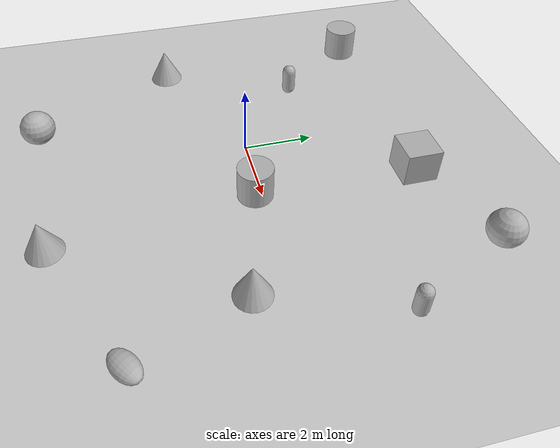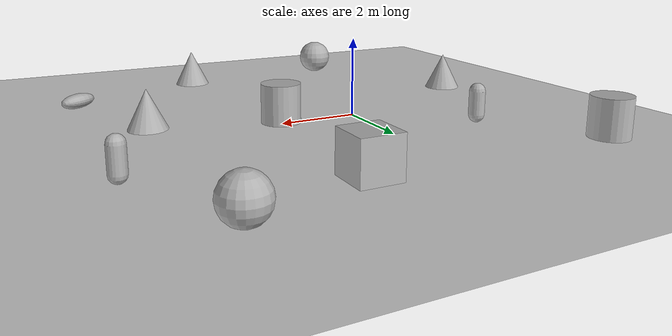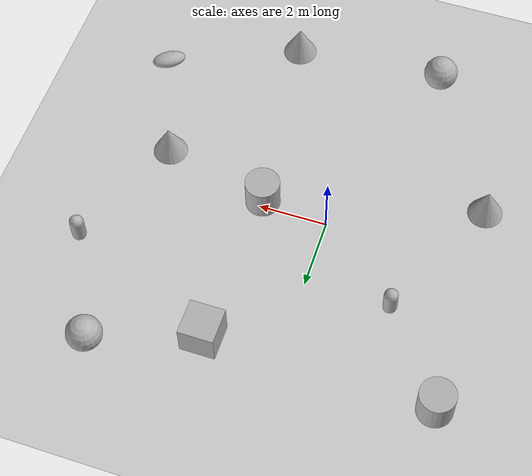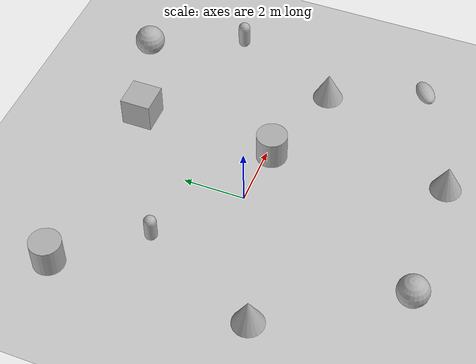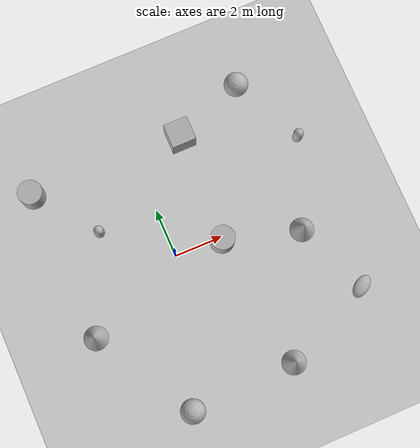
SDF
<sdf version='1.10'>
  <world name='empty'>
    <physics name='1ms' type='ignored'>
      <max_step_size>0.001</max_step_size>
      <real_time_factor>1</real_time_factor>
      <real_time_update_rate>1000</real_time_update_rate>
    </physics>

    <plugin
      filename="gz-sim-navsat-system"
      name="gz::sim::systems::NavSat">
    </plugin>

    ...

    <spherical_coordinates>
      <surface_model>EARTH_WGS84</surface_model>
      <world_frame_orientation>ENU</world_frame_orientation>
      <latitude_deg>17.723388</latitude_deg>
      <longitude_deg>78.094193</longitude_deg>
      <elevation>0</elevation>
      <heading_deg>0</heading_deg>
    </spherical_coordinates>
    <plugin name='gz::sim::systems::Physics' filename='gz-sim-physics-system'/>
    <plugin name='gz::sim::systems::UserCommands' filename='gz-sim-user-commands-system'/>
    <plugin name='gz::sim::systems::SceneBroadcaster' filename='gz-sim-scene-broadcaster-system'/>
    <plugin name='gz::sim::systems::Contact' filename='gz-sim-contact-system'/>
    <gravity>0 0 -9.8000000000000007</gravity>
    <magnetic_field>5.5644999999999998e-06 2.2875799999999999e-05 -4.2388400000000002e-05</magnetic_field>
    <atmosphere type='adiabatic'/>
    <scene>
      <ambient>0.400000006 0.400000006 0.400000006 1</ambient>
      <background>0.699999988 0.699999988 0.699999988 1</background>
      <shadows>true</shadows>
    </scene>
    <model name='ground_plane'>
      <static>true</static>
      <link name='link'>
        <collision name='collision'>
          <geometry>
            <plane>
              <normal>0 0 1</normal>
              <size>100 100</size>
            </plane>
          </geometry>
          <surface>
            <friction>
              <ode/>
            </friction>
            <bounce/>
            <contact/>
          </surface>
        </collision>
        <visual name='visual'>
          <geometry>
            <plane>
              <normal>0 0 1</normal>
              <size>100 100</size>
            </plane>
          </geometry>
          <material>
            <ambient>0.800000012 0.800000012 0.800000012 1</ambient>
            <diffuse>0.800000012 0.800000012 0.800000012 1</diffuse>
            <specular>0.800000012 0.800000012 0.800000012 1</specular>
          </material>
        </visual>
        <pose>0 0 0 0 0 0</pose>
        <inertial>
          <pose>0 0 0 0 0 0</pose>
          <mass>1</mass>
          <inertia>
            <ixx>1</ixx>
            <ixy>0</ixy>
            <ixz>0</ixz>
            <iyy>1</iyy>
            <iyz>0</iyz>
            <izz>1</izz>
          </inertia>
        </inertial>
        <enable_wind>false</enable_wind>
      </link>
      <pose>0 0 0 0 0 0</pose>
      <self_collide>false</self_collide>
    </model>
    <model name='cylinder'>
      <pose>1.9491949973074005 -0.18666138612679356 0.49999943207967634 2.2652544450273796e-19 -1.6958743284313586e-19 3.0096288418541994e-21</pose>
      <link name='cylinder_link'>
        <inertial>
          <inertia>
            <ixx>0.14580000000000001</ixx>
            <ixy>0</ixy>
            <ixz>0</ixz>
            <iyy>0.14580000000000001</iyy>
            <iyz>0</iyz>
            <izz>0.125</izz>
          </inertia>
          <mass>1</mass>
          <pose>0 0 0 0 0 0</pose>
        </inertial>
        <collision name='cylinder_collision'>
          <geometry>
            <cylinder>
              <radius>0.5</radius>
              <length>1</length>
            </cylinder>
          </geometry>
          <surface>
            <friction>
              <ode/>
            </friction>
            <bounce/>
            <contact/>
          </surface>
        </collision>
        <visual name='cylinder_visual'>
          <geometry>
            <cylinder>
              <radius>0.5</radius>
              <length>1</length>
            </cylinder>
          </geometry>
          <material>
            <ambient>0.300000012 0.300000012 0.300000012 1</ambient>
            <diffuse>0.699999988 0.699999988 0.699999988 1</diffuse>
            <specular>1 1 1 1</specular>
          </material>
        </visual>
        <pose>0 0 0 0 0 0</pose>
        <enable_wind>false</enable_wind>
      </link>
      <static>false</static>
      <self_collide>false</self_collide>
    </model>
    <model name='cone'>
      <pose>2.6227709288355356 -5.7325764271143242 0.49999999992120586 2.2548609721278242e-12 -8.4123610005412179e-10 1.6328088269946946e-17</pose>
      <link name='cone_link'>
        <inertial>
          <inertia>
            <ixx>0.074999999999999997</ixx>
            <ixy>0</ixy>
            <ixz>0</ixz>
            <iyy>0.074999999999999997</iyy>
            <iyz>0</iyz>
            <izz>0.074999999999999997</izz>
          </inertia>
          <mass>1</mass>
          <pose>0 0 0 0 0 0</pose>
        </inertial>
        <collision name='cone_collision'>
          <geometry>
            <cone>
              <radius>0.5</radius>
              <length>1</length>
            </cone>
          </geometry>
          <surface>
            <friction>
              <ode/>
            </friction>
            <bounce/>
            <contact/>
          </surface>
        </collision>
        <visual name='cone_visual'>
          <geometry>
            <cone>
              <radius>0.5</radius>
              <length>1</length>
            </cone>
          </geometry>
          <material>
            <ambient>0.300000012 0.300000012 0.300000012 1</ambient>
            <diffuse>0.699999988 0.699999988 0.699999988 1</diffuse>
            <specular>1 1 1 1</specular>
          </material>
        </visual>
        <pose>0 0 0 0 0 0</pose>
        <enable_wind>false</enable_wind>
      </link>
      <static>false</static>
      <self_collide>false</self_collide>
    </model>
    <model name='cylinder_0'>
      <pose>-4.3361114992069458 4.4737904457828108 0.49999943207967634 -3.866972069214221e-20 2.1728801672960257e-19 1.1533597140666703e-21</pose>
      <link name='cylinder_link'>
        <inertial>
          <inertia>
            <ixx>0.14580000000000001</ixx>
            <ixy>0</ixy>
            <ixz>0</ixz>
            <iyy>0.14580000000000001</iyy>
            <iyz>0</iyz>
            <izz>0.125</izz>
          </inertia>
          <mass>1</mass>
          <pose>0 0 0 0 0 0</pose>
        </inertial>
        <collision name='cylinder_collision'>
          <geometry>
            <cylinder>
              <radius>0.5</radius>
              <length>1</length>
            </cylinder>
          </geometry>
          <surface>
            <friction>
              <ode/>
            </friction>
            <bounce/>
            <contact/>
          </surface>
        </collision>
        <visual name='cylinder_visual'>
          <geometry>
            <cylinder>
              <radius>0.5</radius>
              <length>1</length>
            </cylinder>
          </geometry>
          <material>
            <ambient>0.300000012 0.300000012 0.300000012 1</ambient>
            <diffuse>0.699999988 0.699999988 0.699999988 1</diffuse>
            <specular>1 1 1 1</specular>
          </material>
        </visual>
        <pose>0 0 0 0 0 0</pose>
        <enable_wind>false</enable_wind>
      </link>
      <static>false</static>
      <self_collide>false</self_collide>
    </model>
    <model name='cone_0'>
      <pose>-4.1705487531767282 -1.7868455643138845 0.49999999992120586 2.2548609712554637e-12 -8.4123610005065238e-10 1.6328412803588335e-17</pose>
      <link name='cone_link'>
        <inertial>
          <inertia>
            <ixx>0.074999999999999997</ixx>
            <ixy>0</ixy>
            <ixz>0</ixz>
            <iyy>0.074999999999999997</iyy>
            <iyz>0</iyz>
            <izz>0.074999999999999997</izz>
          </inertia>
          <mass>1</mass>
          <pose>0 0 0 0 0 0</pose>
        </inertial>
        <collision name='cone_collision'>
          <geometry>
            <cone>
              <radius>0.5</radius>
              <length>1</length>
            </cone>
          </geometry>
          <surface>
            <friction>
              <ode/>
            </friction>
            <bounce/>
            <contact/>
          </surface>
        </collision>
        <visual name='cone_visual'>
          <geometry>
            <cone>
              <radius>0.5</radius>
              <length>1</length>
            </cone>
          </geometry>
          <material>
            <ambient>0.300000012 0.300000012 0.300000012 1</ambient>
            <diffuse>0.699999988 0.699999988 0.699999988 1</diffuse>
            <specular>1 1 1 1</specular>
          </material>
        </visual>
        <pose>0 0 0 0 0 0</pose>
        <enable_wind>false</enable_wind>
      </link>
      <static>false</static>
      <self_collide>false</self_collide>
    </model>
    <model name='box'>
      <pose>2.0645759810764712 4.3980687087396788 0.49999999980497606 1.0048033485058014e-21 -2.4640853465547739e-21 -3.9210766489770922e-22</pose>
      <link name='box_link'>
        <inertial>
          <inertia>
            <ixx>0.16666</ixx>
            <ixy>0</ixy>
            <ixz>0</ixz>
            <iyy>0.16666</iyy>
            <iyz>0</iyz>
            <izz>0.16666</izz>
          </inertia>
          <mass>1</mass>
          <pose>0 0 0 0 0 0</pose>
        </inertial>
        <collision name='box_collision'>
          <geometry>
            <box>
              <size>1 1 1</size>
            </box>
          </geometry>
          <surface>
            <friction>
              <ode/>
            </friction>
            <bounce/>
            <contact/>
          </surface>
        </collision>
        <visual name='box_visual'>
          <geometry>
            <box>
              <size>1 1 1</size>
            </box>
          </geometry>
          <material>
            <ambient>0.300000012 0.300000012 0.300000012 1</ambient>
            <diffuse>0.699999988 0.699999988 0.699999988 1</diffuse>
            <specular>1 1 1 1</specular>
          </material>
        </visual>
        <pose>0 0 0 0 0 0</pose>
        <enable_wind>false</enable_wind>
      </link>
      <static>false</static>
      <self_collide>false</self_collide>
    </model>
    <model name='ellipsoid'>
      <pose>6.2983548225912624 -4.049113441040805 0.18666847501624714 1.5707963102078046 -1.3774922087442218 -0.9788610840547004</pose>
      <link name='ellipsoid_link'>
        <inertial>
          <inertia>
            <ixx>0.068000000000000005</ixx>
            <ixy>0</ixy>
            <ixz>0</ixz>
            <iyy>0.058000000000000003</iyy>
            <iyz>0</iyz>
            <izz>0.025999999999999999</izz>
          </inertia>
          <mass>1</mass>
          <pose>0 0 0 0 0 0</pose>
        </inertial>
        <collision name='ellipsoid_collision'>
          <geometry>
            <ellipsoid>
              <radii>0.20000000000000001 0.29999999999999999 0.5</radii>
            </ellipsoid>
          </geometry>
          <surface>
            <friction>
              <ode/>
            </friction>
            <bounce/>
            <contact/>
          </surface>
        </collision>
        <visual name='ellipsoid_visual'>
          <geometry>
            <ellipsoid>
              <radii>0.20000000000000001 0.29999999999999999 0.5</radii>
            </ellipsoid>
          </geometry>
          <material>
            <ambient>0.300000012 0.300000012 0.300000012 1</ambient>
            <diffuse>0.699999988 0.699999988 0.699999988 1</diffuse>
            <specular>1 1 1 1</specular>
          </material>
        </visual>
        <pose>0 0 0 0 0 0</pose>
        <enable_wind>false</enable_wind>
      </link>
      <static>false</static>
      <self_collide>false</self_collide>
    </model>
    <model name='sphere'>
      <pose>-1.7662985235012005 -5.8905684894419013 0.49999999980498194 0 0 0</pose>
      <link name='sphere_link'>
        <inertial>
          <inertia>
            <ixx>0.10000000000000001</ixx>
            <ixy>0</ixy>
            <ixz>0</ixz>
            <iyy>0.10000000000000001</iyy>
            <iyz>0</iyz>
            <izz>0.10000000000000001</izz>
          </inertia>
          <mass>1</mass>
          <pose>0 0 0 0 0 0</pose>
        </inertial>
        <collision name='sphere_collision'>
          <geometry>
            <sphere>
              <radius>0.5</radius>
            </sphere>
          </geometry>
          <surface>
            <friction>
              <ode/>
            </friction>
            <bounce/>
            <contact/>
          </surface>
        </collision>
        <visual name='sphere_visual'>
          <geometry>
            <sphere>
              <radius>0.5</radius>
            </sphere>
          </geometry>
          <material>
            <ambient>0.300000012 0.300000012 0.300000012 1</ambient>
            <diffuse>0.699999988 0.699999988 0.699999988 1</diffuse>
            <specular>1 1 1 1</specular>
          </material>
        </visual>
        <pose>0 0 0 0 0 0</pose>
        <enable_wind>false</enable_wind>
      </link>
      <static>false</static>
      <self_collide>false</self_collide>
    </model>
    <model name='capsule'>
      <pose>-2.4287021384177958 2.0220424879510839 0.49999999980498194 0 0 0</pose>
      <link name='capsule_link'>
        <inertial>
          <inertia>
            <ixx>0.074153999999999998</ixx>
            <ixy>0</ixy>
            <ixz>0</ixz>
            <iyy>0.074153999999999998</iyy>
            <iyz>0</iyz>
            <izz>0.018769000000000001</izz>
          </inertia>
          <mass>1</mass>
          <pose>0 0 0 0 0 0</pose>
        </inertial>
        <collision name='capsule_collision'>
          <geometry>
            <capsule>
              <radius>0.20000000000000001</radius>
              <length>0.59999999999999998</length>
            </capsule>
          </geometry>
          <surface>
            <friction>
              <ode/>
            </friction>
            <bounce/>
            <contact/>
          </surface>
        </collision>
        <visual name='capsule_visual'>
          <geometry>
            <capsule>
              <radius>0.20000000000000001</radius>
              <length>0.59999999999999998</length>
            </capsule>
          </geometry>
          <material>
            <ambient>0.300000012 0.300000012 0.300000012 1</ambient>
            <diffuse>0.699999988 0.699999988 0.699999988 1</diffuse>
            <specular>1 1 1 1</specular>
          </material>
        </visual>
        <pose>0 0 0 0 0 0</pose>
        <enable_wind>false</enable_wind>
      </link>
      <static>false</static>
      <self_collide>false</self_collide>
    </model>
    <model name='capsule_0'>
      <pose>6.4462953286473077 2.5227413671664802 0.49999999980498194 0 0 0</pose>
      <link name='capsule_link'>
        <inertial>
          <inertia>
            <ixx>0.074153999999999998</ixx>
            <ixy>0</ixy>
            <ixz>0</ixz>
            <iyy>0.074153999999999998</iyy>
            <iyz>0</iyz>
            <izz>0.018769000000000001</izz>
          </inertia>
          <mass>1</mass>
          <pose>0 0 0 0 0 0</pose>
        </inertial>
        <collision name='capsule_collision'>
          <geometry>
            <capsule>
              <radius>0.20000000000000001</radius>
              <length>0.59999999999999998</length>
            </capsule>
          </geometry>
          <surface>
            <friction>
              <ode/>
            </friction>
            <bounce/>
            <contact/>
          </surface>
        </collision>
        <visual name='capsule_visual'>
          <geometry>
            <capsule>
              <radius>0.20000000000000001</radius>
              <length>0.59999999999999998</length>
            </capsule>
          </geometry>
          <material>
            <ambient>0.300000012 0.300000012 0.300000012 1</ambient>
            <diffuse>0.699999988 0.699999988 0.699999988 1</diffuse>
            <specular>1 1 1 1</specular>
          </material>
        </visual>
        <pose>0 0 0 0 0 0</pose>
        <enable_wind>false</enable_wind>
      </link>
      <static>false</static>
      <self_collide>false</self_collide>
    </model>
    <model name='sphere_0'>
      <pose>5.0040928000709943 5.4635479946831529 0.49999999980498194 0 0 0</pose>
      <link name='sphere_link'>
        <inertial>
          <inertia>
            <ixx>0.10000000000000001</ixx>
            <ixy>0</ixy>
            <ixz>0</ixz>
            <iyy>0.10000000000000001</iyy>
            <iyz>0</iyz>
            <izz>0.10000000000000001</izz>
          </inertia>
          <mass>1</mass>
          <pose>0 0 0 0 0 0</pose>
        </inertial>
        <collision name='sphere_collision'>
          <geometry>
            <sphere>
              <radius>0.5</radius>
            </sphere>
          </geometry>
          <surface>
            <friction>
              <ode/>
            </friction>
            <bounce/>
            <contact/>
          </surface>
        </collision>
        <visual name='sphere_visual'>
          <geometry>
            <sphere>
              <radius>0.5</radius>
            </sphere>
          </geometry>
          <material>
            <ambient>0.300000012 0.300000012 0.300000012 1</ambient>
            <diffuse>0.699999988 0.699999988 0.699999988 1</diffuse>
            <specular>1 1 1 1</specular>
          </material>
        </visual>
        <pose>0 0 0 0 0 0</pose>
        <enable_wind>false</enable_wind>
      </link>
      <static>false</static>
      <self_collide>false</self_collide>
    </model>
    <model name='cone_1'>
      <pose>5.0901144792084718 -1.0210492403022948 0.49999999992120586 2.2548609812814695e-12 -8.4123610002444461e-10 1.632879011514546e-17</pose>
      <link name='cone_link'>
        <inertial>
          <inertia>
            <ixx>0.074999999999999997</ixx>
            <ixy>0</ixy>
            <ixz>0</ixz>
            <iyy>0.074999999999999997</iyy>
            <iyz>0</iyz>
            <izz>0.074999999999999997</izz>
          </inertia>
          <mass>1</mass>
          <pose>0 0 0 0 0 0</pose>
        </inertial>
        <collision name='cone_collision'>
          <geometry>
            <cone>
              <radius>0.5</radius>
              <length>1</length>
            </cone>
          </geometry>
          <surface>
            <friction>
              <ode/>
            </friction>
            <bounce/>
            <contact/>
          </surface>
        </collision>
        <visual name='cone_visual'>
          <geometry>
            <cone>
              <radius>0.5</radius>
              <length>1</length>
            </cone>
          </geometry>
          <material>
            <ambient>0.300000012 0.300000012 0.300000012 1</ambient>
            <diffuse>0.699999988 0.699999988 0.699999988 1</diffuse>
            <specular>1 1 1 1</specular>
          </material>
        </visual>
        <pose>0 0 0 0 0 0</pose>
        <enable_wind>false</enable_wind>
      </link>
      <static>false</static>
      <self_collide>false</self_collide>
    </model>
    <light name='sun' type='directional'>
      <pose>0 0 10 0 0 0</pose>
      <cast_shadows>true</cast_shadows>
      <intensity>1</intensity>
      <direction>-0.5 0.10000000000000001 -0.90000000000000002</direction>
      <diffuse>0.800000012 0.800000012 0.800000012 1</diffuse>
      <specular>0.200000003 0.200000003 0.200000003 1</specular>
      <attenuation>
        <range>1000</range>
        <linear>0.01</linear>
        <constant>0.90000000000000002</constant>
        <quadratic>0.001</quadratic>
      </attenuation>
      <spot>
        <inner_angle>0</inner_angle>
        <outer_angle>0</outer_angle>
        <falloff>0</falloff>
      </spot>
    </light>
    <light name='pointlight' type='point'>
      <pose>-1.0657448470739439 0.39633344163686424 2 0 0 0</pose>
      <cast_shadows>false</cast_shadows>
      <intensity>1</intensity>
      <direction>0 0 -1</direction>
      <diffuse>0.5 0.5 0.5 1</diffuse>
      <specular>0.5 0.5 0.5 1</specular>
      <attenuation>
        <range>4</range>
        <linear>0.5</linear>
        <constant>0.20000000000000001</constant>
        <quadratic>0.01</quadratic>
      </attenuation>
      <spot>
        <inner_angle>0</inner_angle>
        <outer_angle>0</outer_angle>
        <falloff>0</falloff>
      </spot>
    </light>
  </world>
</sdf>
